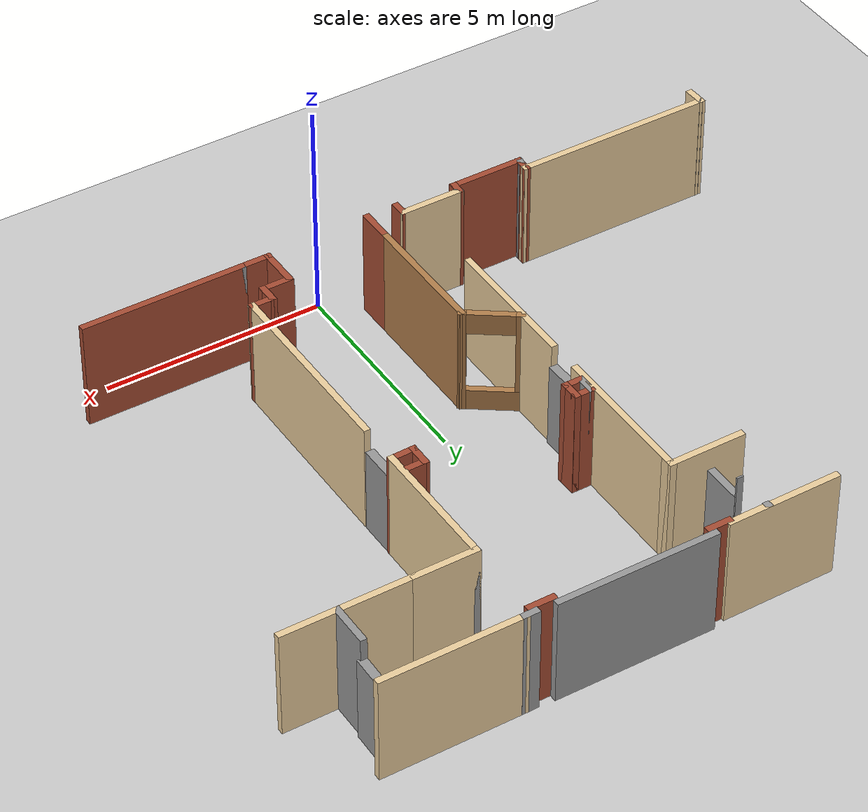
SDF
<sdf version="1.6">
 <world name="default">
  <model name="ground_plane">
   <static>1</static>
   <link name="link">
    <collision name="collision">
     <geometry><plane><normal>0 0 1</normal><size>100 100</size></plane></geometry>
     <surface>
      <contact><collide_bitmask>65535</collide_bitmask></contact>
      <friction><ode><mu>100</mu><mu2>50</mu2></ode></friction>
     </surface>
    </collision>
    <visual name="visual">
     <cast_shadows>0</cast_shadows>
     <geometry><plane><normal>0 0 1</normal><size>100 100</size></plane></geometry>
     <material>
      <script><uri>file://media/materials/scripts/gazebo.material</uri><name>Gazebo/Grey</name></script>
     </material>
    </visual>
   </link>
  </model>
  <model name="NSH_Hallway">
   <pose>-1.11426 2.16116 0 0 -0 0</pose>
   <link name="Door_5">
    <collision name="Door_5_Collision">
     <geometry><box><size>0.745301 0.2 2</size></box></geometry>
     <pose>0 0 1 0 -0 0</pose>
    </collision>
    <visual name="Door_5_Visual">
     <pose>0 0 1 0 -0 0</pose>
     <geometry><box><size>0.745301 0.2 2</size></box></geometry>
     <material>
      <script><uri>file://media/materials/scripts/gazebo.material</uri><name>Gazebo/Grey</name></script>
     </material>
    </visual>
    <pose>-0.72798 4.33452 0 0 -0 1.58636</pose>
   </link>
   <link name="Door_6">
    <collision name="Door_6_Collision">
     <geometry><box><size>0.80689 0.2 2</size></box></geometry>
     <pose>0 0 1 0 -0 0</pose>
    </collision>
    <visual name="Door_6_Visual">
     <pose>0 0 1 0 -0 0</pose>
     <geometry><box><size>0.80689 0.2 2</size></box></geometry>
     <material>
      <script><uri>file://media/materials/scripts/gazebo.material</uri><name>Gazebo/Grey</name></script>
     </material>
    </visual>
    <pose>3.65842 4.59476 0 0 -0 -1.56651</pose>
   </link>
   <link name="Door_7">
    <collision name="Door_7_Collision">
     <geometry><box><size>0.9 0.17 2</size></box></geometry>
     <pose>0 0 1 0 -0 0</pose>
    </collision>
    <visual name="Door_7_Visual">
     <pose>0 0 1 0 -0 0</pose>
     <geometry><box><size>0.9 0.17 2</size></box></geometry>
     <material>
      <script><uri>file://media/materials/scripts/gazebo.material</uri><name>Gazebo/Grey</name></script>
     </material>
    </visual>
    <pose>-1.62302 8.5531 0 0 -0 1.5718</pose>
   </link>
   <link name="Door_8">
    <collision name="Door_8_Collision">
     <geometry><box><size>1.0376 0.2 2</size></box></geometry>
     <pose>0 0 1 0 -0 0</pose>
    </collision>
    <visual name="Door_8_Visual">
     <pose>0 0 1 0 -0 0</pose>
     <geometry><box><size>1.0376 0.2 2</size></box></geometry>
     <material>
      <script><uri>file://media/materials/scripts/gazebo.material</uri><name>Gazebo/Grey</name></script>
     </material>
    </visual>
    <pose>6.70761 9.4487 0 0 -0 -1.58386</pose>
   </link>
   <link name="Wall_102">
    <collision name="Wall_102_Collision">
     <geometry><box><size>0.563182 0.15 2.5</size></box></geometry>
     <pose>0 0 1.25 0 -0 0</pose>
    </collision>
    <visual name="Wall_102_Visual">
     <pose>0 0 1.25 0 -0 0</pose>
     <geometry><box><size>0.563182 0.15 2.5</size></box></geometry>
     <material>
      <script><uri>file://media/materials/scripts/gazebo.material</uri><name>Gazebo/Bricks</name></script>
      <ambient>1 1 1 1</ambient>
     </material>
     <meta><layer>0</layer></meta>
    </visual>
    <pose>3.20361 5.2674 0 0 -0 -1.58529</pose>
   </link>
   <link name="Wall_103">
    <collision name="Wall_103_Collision">
     <geometry><box><size>0.64071 0.15 2.5</size></box></geometry>
     <pose>0 0 1.25 0 -0 0</pose>
    </collision>
    <visual name="Wall_103_Visual">
     <pose>0 0 1.25 0 -0 0</pose>
     <geometry><box><size>0.64071 0.15 2.5</size></box></geometry>
     <material>
      <script><uri>file://media/materials/scripts/gazebo.material</uri><name>Gazebo/Bricks</name></script>
      <ambient>1 1 1 1</ambient>
     </material>
     <meta><layer>0</layer></meta>
    </visual>
    <pose>3.4459 5.06699 0 0 -0 0.024385</pose>
   </link>
   <link name="Wall_17">
    <collision name="Wall_17_Collision">
     <geometry><box><size>4.5 0.15 2.5</size></box></geometry>
     <pose>0 0 1.25 0 -0 0</pose>
    </collision>
    <visual name="Wall_17_Visual">
     <pose>0 0 1.25 0 -0 0</pose>
     <geometry><box><size>4.5 0.15 2.5</size></box></geometry>
     <material>
      <script><uri>file://media/materials/scripts/gazebo.material</uri><name>Gazebo/Grey</name></script>
      <ambient>0.921569 0.807843 0.615686 1</ambient>
     </material>
     <meta><layer>0</layer></meta>
    </visual>
    <pose>3.6845 1.90132 0 0 -0 -1.5708</pose>
   </link>
   <link name="Wall_20">
    <collision name="Wall_20_Collision">
     <geometry><box><size>0.597367 0.15 2.5</size></box></geometry>
     <pose>0 0 1.25 0 -0 0</pose>
    </collision>
    <visual name="Wall_20_Visual">
     <pose>0 0 1.25 0 -0 0</pose>
     <geometry><box><size>0.597367 0.15 2.5</size></box></geometry>
     <material>
      <script><uri>file://media/materials/scripts/gazebo.material</uri><name>Gazebo/Bricks</name></script>
      <ambient>1 1 1 1</ambient>
     </material>
     <meta><layer>0</layer></meta>
    </visual>
    <pose>3.461 -0.27268 0 0 -0 3.13712</pose>
   </link>
   <link name="Wall_208">
    <pose>-1.61648 9.49659 0 0 -0 -1.5708</pose>
    <visual name="Wall_208_Visual_0">
     <pose>-0.419604 0 1.25 0 -0 0</pose>
     <geometry><box><size>0.160793 0.15 2.5</size></box></geometry>
     <material>
      <script><uri>file://media/materials/scripts/gazebo.material</uri><name>Gazebo/Grey</name></script>
      <ambient>1 1 1 1</ambient>
     </material>
     <meta><layer>0</layer></meta>
    </visual>
    <collision name="Wall_208_Collision_0">
     <geometry><box><size>0.160793 0.15 2.5</size></box></geometry>
     <pose>-0.419604 0 1.25 0 -0 0</pose>
    </collision>
    <visual name="Wall_208_Visual_1">
     <pose>0.480396 0 1.25 0 -0 0</pose>
     <geometry><box><size>0.039207 0.15 2.5</size></box></geometry>
     <material>
      <script><uri>file://media/materials/scripts/gazebo.material</uri><name>Gazebo/Grey</name></script>
      <ambient>1 1 1 1</ambient>
     </material>
     <meta><layer>0</layer></meta>
    </visual>
    <collision name="Wall_208_Collision_1">
     <geometry><box><size>0.039207 0.15 2.5</size></box></geometry>
     <pose>0.480396 0 1.25 0 -0 0</pose>
    </collision>
   </link>
   <link name="Wall_21">
    <collision name="Wall_21_Collision">
     <geometry><box><size>0.5 0.15 2.5</size></box></geometry>
     <pose>0 0 1.25 0 -0 0</pose>
    </collision>
    <visual name="Wall_21_Visual">
     <pose>0 0 1.25 0 -0 0</pose>
     <geometry><box><size>0.5 0.15 2.5</size></box></geometry>
     <material>
      <script><uri>file://media/materials/scripts/gazebo.material</uri><name>Gazebo/Bricks</name></script>
      <ambient>1 1 1 1</ambient>
     </material>
     <meta><layer>0</layer></meta>
    </visual>
    <pose>3.2375 -0.44668 0 0 -0 -1.5708</pose>
   </link>
   <link name="Wall_22">
    <collision name="Wall_22_Collision">
     <geometry><box><size>0.75 0.15 2.5</size></box></geometry>
     <pose>0 0 1.25 0 -0 0</pose>
    </collision>
    <visual name="Wall_22_Visual">
     <pose>0 0 1.25 0 -0 0</pose>
     <geometry><box><size>0.75 0.15 2.5</size></box></geometry>
     <material>
      <script><uri>file://media/materials/scripts/gazebo.material</uri><name>Gazebo/Bricks</name></script>
      <ambient>1 1 1 1</ambient>
     </material>
     <meta><layer>0</layer></meta>
    </visual>
    <pose>2.9375 -0.62168 0 0 -0 3.14159</pose>
   </link>
   <link name="Wall_227">
    <pose>-0.233746 2.45717 0 0 -0 2.52388</pose>
    <visual name="Wall_227_Visual_0">
     <pose>-0.59521 0 1.25 0 -0 0</pose>
     <geometry><box><size>0.174603 0.15 2.5</size></box></geometry>
     <material>
      <script><uri>file://media/materials/scripts/gazebo.material</uri><name>Gazebo/Wood</name></script>
      <ambient>1 1 1 1</ambient>
     </material>
     <meta><layer>0</layer></meta>
    </visual>
    <collision name="Wall_227_Collision_0">
     <geometry><box><size>0.174603 0.15 2.5</size></box></geometry>
     <pose>-0.59521 0 1.25 0 -0 0</pose>
    </collision>
    <visual name="Wall_227_Visual_1">
     <pose>0.087302 0 0.25 0 -0 0</pose>
     <geometry><box><size>1.19042 0.15 0.5</size></box></geometry>
     <material>
      <script><uri>file://media/materials/scripts/gazebo.material</uri><name>Gazebo/Wood</name></script>
      <ambient>1 1 1 1</ambient>
     </material>
     <meta><layer>0</layer></meta>
    </visual>
    <collision name="Wall_227_Collision_1">
     <geometry><box><size>1.19042 0.15 0.5</size></box></geometry>
     <pose>0.087302 0 0.25 0 -0 0</pose>
    </collision>
    <visual name="Wall_227_Visual_2">
     <pose>0.587302 0 1.5 0 -0 0</pose>
     <geometry><box><size>0.19042 0.15 2</size></box></geometry>
     <material>
      <script><uri>file://media/materials/scripts/gazebo.material</uri><name>Gazebo/Wood</name></script>
      <ambient>1 1 1 1</ambient>
     </material>
     <meta><layer>0</layer></meta>
    </visual>
    <collision name="Wall_227_Collision_2">
     <geometry><box><size>0.19042 0.15 2</size></box></geometry>
     <pose>0.587302 0 1.5 0 -0 0</pose>
    </collision>
    <visual name="Wall_227_Visual_3">
     <pose>-0.007908 0 2.25 0 -0 0</pose>
     <geometry><box><size>1 0.15 0.5</size></box></geometry>
     <material>
      <script><uri>file://media/materials/scripts/gazebo.material</uri><name>Gazebo/Wood</name></script>
      <ambient>1 1 1 1</ambient>
     </material>
     <meta><layer>0</layer></meta>
    </visual>
    <collision name="Wall_227_Collision_3">
     <geometry><box><size>1 0.15 0.5</size></box></geometry>
     <pose>-0.007908 0 2.25 0 -0 0</pose>
    </collision>
   </link>
   <link name="Wall_23">
    <collision name="Wall_23_Collision">
     <geometry><box><size>1 0.15 2.5</size></box></geometry>
     <pose>0 0 1.25 0 -0 0</pose>
    </collision>
    <visual name="Wall_23_Visual">
     <pose>0 0 1.25 0 -0 0</pose>
     <geometry><box><size>1 0.15 2.5</size></box></geometry>
     <material>
      <script><uri>file://media/materials/scripts/gazebo.material</uri><name>Gazebo/Bricks</name></script>
      <ambient>1 1 1 1</ambient>
     </material>
     <meta><layer>0</layer></meta>
    </visual>
    <pose>2.6375 -1.04668 0 0 -0 -1.5708</pose>
   </link>
   <link name="Wall_231">
    <collision name="Wall_231_Collision">
     <geometry><box><size>3.62605 0.15 2.5</size></box></geometry>
     <pose>0 0 1.25 0 -0 0</pose>
    </collision>
    <visual name="Wall_231_Visual">
     <pose>0 0 1.25 0 -0 0</pose>
     <geometry><box><size>3.62605 0.15 2.5</size></box></geometry>
     <material>
      <script><uri>file://media/materials/scripts/gazebo.material</uri><name>Gazebo/Grey</name></script>
      <ambient>0.180392 0.203922 0.211765 1</ambient>
     </material>
     <meta><layer>0</layer></meta>
    </visual>
    <pose>1.39727 10.0188 0 0 -0 -0.003914</pose>
   </link>
   <link name="Wall_24">
    <collision name="Wall_24_Collision">
     <geometry><box><size>0.776389 0.15 2.5</size></box></geometry>
     <pose>0 0 1.25 0 -0 0</pose>
    </collision>
    <visual name="Wall_24_Visual">
     <pose>0 0 1.25 0 -0 0</pose>
     <geometry><box><size>0.776389 0.15 2.5</size></box></geometry>
     <material>
      <script><uri>file://media/materials/scripts/gazebo.material</uri><name>Gazebo/Bricks</name></script>
      <ambient>1 1 1 1</ambient>
     </material>
     <meta><layer>0</layer></meta>
    </visual>
    <pose>2.9505 -1.47168 0 0 -0 0</pose>
   </link>
   <link name="Wall_25">
    <collision name="Wall_25_Collision">
     <geometry><box><size>0.15 0.15 2.5</size></box></geometry>
     <pose>0 0 1.25 0 -0 0</pose>
    </collision>
    <visual name="Wall_25_Visual">
     <pose>0 0 1.25 0 -0 0</pose>
     <geometry><box><size>0.15 0.15 2.5</size></box></geometry>
     <material>
      <script><uri>file://media/materials/scripts/gazebo.material</uri><name>Gazebo/Grey</name></script>
      <ambient>1 1 1 1</ambient>
     </material>
     <meta><layer>0</layer></meta>
    </visual>
    <pose>3.2635 -1.47168 0 0 -0 0</pose>
   </link>
   <link name="Wall_28">
    <collision name="Wall_28_Collision">
     <geometry><box><size>3.74144 0.15 2.5</size></box></geometry>
     <pose>0 0 1.25 0 -0 0</pose>
    </collision>
    <visual name="Wall_28_Visual">
     <pose>0 0 1.25 0 -0 0</pose>
     <geometry><box><size>3.74144 0.15 2.5</size></box></geometry>
     <material>
      <script><uri>file://media/materials/scripts/gazebo.material</uri><name>Gazebo/Bricks</name></script>
      <ambient>1 1 1 1</ambient>
     </material>
     <meta><layer>0</layer></meta>
    </visual>
    <pose>5.059 -1.47168 0 0 -0 0</pose>
   </link>
   <link name="Wall_31">
    <collision name="Wall_31_Collision">
     <geometry><box><size>3 0.15 2.5</size></box></geometry>
     <pose>0 0 1.25 0 -0 0</pose>
    </collision>
    <visual name="Wall_31_Visual">
     <pose>0 0 1.25 0 -0 0</pose>
     <geometry><box><size>3 0.15 2.5</size></box></geometry>
     <material>
      <script><uri>file://media/materials/scripts/gazebo.material</uri><name>Gazebo/Wood</name></script>
      <ambient>1 1 1 1</ambient>
     </material>
     <meta><layer>0</layer></meta>
    </visual>
    <pose>0.261501 0.68032 0 0 -0 1.5708</pose>
   </link>
   <link name="Wall_33">
    <collision name="Wall_33_Collision">
     <geometry><box><size>3.22621 0.15 2.5</size></box></geometry>
     <pose>0 0 1.25 0 -0 0</pose>
    </collision>
    <visual name="Wall_33_Visual">
     <pose>0 0 1.25 0 -0 0</pose>
     <geometry><box><size>3.22621 0.15 2.5</size></box></geometry>
     <material>
      <script><uri>file://media/materials/scripts/gazebo.material</uri><name>Gazebo/Grey</name></script>
      <ambient>0.921569 0.807843 0.615686 1</ambient>
     </material>
     <meta><layer>0</layer></meta>
    </visual>
    <pose>-0.744715 2.35474 0 0 -0 -1.5708</pose>
   </link>
   <link name="Wall_35">
    <collision name="Wall_35_Collision">
     <geometry><box><size>3.27379 0.15 2.5</size></box></geometry>
     <pose>0 0 1.25 0 -0 0</pose>
    </collision>
    <visual name="Wall_35_Visual">
     <pose>0 0 1.25 0 -0 0</pose>
     <geometry><box><size>3.27379 0.15 2.5</size></box></geometry>
     <material>
      <script><uri>file://media/materials/scripts/gazebo.material</uri><name>Gazebo/Grey</name></script>
      <ambient>0.921569 0.807843 0.615686 1</ambient>
     </material>
     <meta><layer>0</layer></meta>
    </visual>
    <pose>-0.74442 6.29502 0 0 -0 1.5708</pose>
   </link>
   <link name="Wall_36">
    <collision name="Wall_36_Collision">
     <geometry><box><size>0.298475 0.15 2.5</size></box></geometry>
     <pose>0 0 1.25 0 -0 0</pose>
    </collision>
    <visual name="Wall_36_Visual">
     <pose>0 0 1.25 0 -0 0</pose>
     <geometry><box><size>0.298475 0.15 2.5</size></box></geometry>
     <material>
      <script><uri>file://media/materials/scripts/gazebo.material</uri><name>Gazebo/Grey</name></script>
      <ambient>0.921569 0.807843 0.615686 1</ambient>
     </material>
     <meta><layer>0</layer></meta>
    </visual>
    <pose>-0.74442 7.93092 0 0 -0 1.5708</pose>
   </link>
   <link name="Wall_37">
    <collision name="Wall_37_Collision">
     <geometry><box><size>1.75 0.15 2.5</size></box></geometry>
     <pose>0 0 1.25 0 -0 0</pose>
    </collision>
    <visual name="Wall_37_Visual">
     <pose>0 0 1.25 0 -0 0</pose>
     <geometry><box><size>1.75 0.15 2.5</size></box></geometry>
     <material>
      <script><uri>file://media/materials/scripts/gazebo.material</uri><name>Gazebo/Grey</name></script>
      <ambient>0.921569 0.807843 0.615686 1</ambient>
     </material>
     <meta><layer>0</layer></meta>
    </visual>
    <pose>-1.54442 8.00492 0 0 -0 3.14159</pose>
   </link>
   <link name="Wall_39">
    <collision name="Wall_39_Collision">
     <geometry><box><size>3.02899 0.15 2.5</size></box></geometry>
     <pose>0 0 1.25 0 -0 0</pose>
    </collision>
    <visual name="Wall_39_Visual">
     <pose>0 0 1.25 0 -0 0</pose>
     <geometry><box><size>3.02899 0.15 2.5</size></box></geometry>
     <material>
      <script><uri>file://media/materials/scripts/gazebo.material</uri><name>Gazebo/Grey</name></script>
      <ambient>0.921569 0.807843 0.615686 1</ambient>
     </material>
     <meta><layer>0</layer></meta>
    </visual>
    <pose>3.6863 6.51246 0 0 -0 1.57419</pose>
   </link>
   <link name="Wall_40">
    <collision name="Wall_40_Collision">
     <geometry><box><size>0.25 0.15 2.5</size></box></geometry>
     <pose>0 0 1.25 0 -0 0</pose>
    </collision>
    <visual name="Wall_40_Visual">
     <pose>0 0 1.25 0 -0 0</pose>
     <geometry><box><size>0.25 0.15 2.5</size></box></geometry>
     <material>
      <script><uri>file://media/materials/scripts/gazebo.material</uri><name>Gazebo/Grey</name></script>
      <ambient>1 1 1 1</ambient>
     </material>
     <meta><layer>0</layer></meta>
    </visual>
    <pose>3.68142 8.00194 0 0 -0 1.5708</pose>
   </link>
   <link name="Wall_41">
    <collision name="Wall_41_Collision">
     <geometry><box><size>1.5 0.15 2.5</size></box></geometry>
     <pose>0 0 1.25 0 -0 0</pose>
    </collision>
    <visual name="Wall_41_Visual">
     <pose>0 0 1.25 0 -0 0</pose>
     <geometry><box><size>1.5 0.15 2.5</size></box></geometry>
     <material>
      <script><uri>file://media/materials/scripts/gazebo.material</uri><name>Gazebo/Grey</name></script>
      <ambient>0.921569 0.807843 0.615686 1</ambient>
     </material>
     <meta><layer>0</layer></meta>
    </visual>
    <pose>4.35642 8.05194 0 0 -0 0</pose>
   </link>
   <link name="Wall_45">
    <collision name="Wall_45_Collision">
     <geometry><box><size>3.25 0.15 2.5</size></box></geometry>
     <pose>0 0 1.25 0 -0 0</pose>
    </collision>
    <visual name="Wall_45_Visual">
     <pose>0 0 1.25 0 -0 0</pose>
     <geometry><box><size>3.25 0.15 2.5</size></box></geometry>
     <material>
      <script><uri>file://media/materials/scripts/gazebo.material</uri><name>Gazebo/Grey</name></script>
      <ambient>0.921569 0.807843 0.615686 1</ambient>
     </material>
     <meta><layer>0</layer></meta>
    </visual>
    <pose>5.40893 9.99034 0 0 -0 3.14159</pose>
   </link>
   <link name="Wall_46">
    <collision name="Wall_46_Collision">
     <geometry><box><size>0.385354 0.15 2.5</size></box></geometry>
     <pose>0 0 1.25 0 -0 0</pose>
    </collision>
    <visual name="Wall_46_Visual">
     <pose>0 0 1.25 0 -0 0</pose>
     <geometry><box><size>0.385354 0.15 2.5</size></box></geometry>
     <material>
      <script><uri>file://media/materials/scripts/gazebo.material</uri><name>Gazebo/Grey</name></script>
      <ambient>1 1 1 1</ambient>
     </material>
     <meta><layer>0</layer></meta>
    </visual>
    <pose>3.74137 9.98847 0 0 -0 -3.1257</pose>
   </link>
   <link name="Wall_48">
    <collision name="Wall_48_Collision">
     <geometry><box><size>0.652278 0.15 2.5</size></box></geometry>
     <pose>0 0 1.25 0 -0 0</pose>
    </collision>
    <visual name="Wall_48_Visual">
     <pose>0 0 1.25 0 -0 0</pose>
     <geometry><box><size>0.652278 0.15 2.5</size></box></geometry>
     <material>
      <script><uri>file://media/materials/scripts/gazebo.material</uri><name>Gazebo/Bricks</name></script>
      <ambient>1 1 1 1</ambient>
     </material>
     <meta><layer>0</layer></meta>
    </visual>
    <pose>3.42086 9.85588 0 0 -0 0</pose>
   </link>
   <link name="Wall_50">
    <collision name="Wall_50_Collision">
     <geometry><box><size>0.593134 0.15 2.5</size></box></geometry>
     <pose>0 0 1.25 0 -0 0</pose>
    </collision>
    <visual name="Wall_50_Visual">
     <pose>0 0 1.25 0 -0 0</pose>
     <geometry><box><size>0.593134 0.15 2.5</size></box></geometry>
     <material>
      <script><uri>file://media/materials/scripts/gazebo.material</uri><name>Gazebo/Bricks</name></script>
      <ambient>1 1 1 1</ambient>
     </material>
     <meta><layer>0</layer></meta>
    </visual>
    <pose>-0.535452 9.87519 0 0 -0 3.14159</pose>
   </link>
   <link name="Wall_52">
    <collision name="Wall_52_Collision">
     <geometry><box><size>2.58705 0.15 2.5</size></box></geometry>
     <pose>0 0 1.25 0 -0 0</pose>
    </collision>
    <visual name="Wall_52_Visual">
     <pose>0 0 1.25 0 -0 0</pose>
     <geometry><box><size>2.58705 0.15 2.5</size></box></geometry>
     <material>
      <script><uri>file://media/materials/scripts/gazebo.material</uri><name>Gazebo/Grey</name></script>
      <ambient>0.921569 0.807843 0.615686 1</ambient>
     </material>
     <meta><layer>0</layer></meta>
    </visual>
    <pose>-1.97541 9.93057 0 0 -0 0.006493</pose>
   </link>
   <link name="Wall_56">
    <collision name="Wall_56_Collision">
     <geometry><box><size>3 0.15 2.5</size></box></geometry>
     <pose>0 0 1.25 0 -0 0</pose>
    </collision>
    <visual name="Wall_56_Visual">
     <pose>0 0 1.25 0 -0 0</pose>
     <geometry><box><size>3 0.15 2.5</size></box></geometry>
     <material>
      <script><uri>file://media/materials/scripts/gazebo.material</uri><name>Gazebo/Grey</name></script>
      <ambient>0.921569 0.807843 0.615686 1</ambient>
     </material>
     <meta><layer>0</layer></meta>
    </visual>
    <pose>6.45642 8.05194 0 0 -0 0</pose>
   </link>
   <link name="Wall_58">
    <pose>6.67321 8.48396 0 0 -0 1.5708</pose>
    <visual name="Wall_58_Visual_0">
     <pose>0 0 1.25 0 -0 0</pose>
     <geometry><box><size>1 0.15 2.5</size></box></geometry>
     <material>
      <script><uri>file://media/materials/scripts/gazebo.material</uri><name>Gazebo/Grey</name></script>
      <ambient>1 1 1 1</ambient>
     </material>
     <meta><layer>0</layer></meta>
    </visual>
    <collision name="Wall_58_Collision_0">
     <geometry><box><size>1 0.15 2.5</size></box></geometry>
     <pose>0 0 1.25 0 -0 0</pose>
    </collision>
    <visual name="Wall_58_Visual_1">
     <pose>0.499122 0 1.25 0 -0 0</pose>
     <geometry><box><size>0.001756 0.15 2.5</size></box></geometry>
     <material>
      <script><uri>file://media/materials/scripts/gazebo.material</uri><name>Gazebo/Grey</name></script>
      <ambient>1 1 1 1</ambient>
     </material>
     <meta><layer>0</layer></meta>
    </visual>
    <collision name="Wall_58_Collision_1">
     <geometry><box><size>0.001756 0.15 2.5</size></box></geometry>
     <pose>0.499122 0 1.25 0 -0 0</pose>
    </collision>
   </link>
   <link name="Wall_60">
    <collision name="Wall_60_Collision">
     <geometry><box><size>0.914579 0.15 2.5</size></box></geometry>
     <pose>0 0 1.25 0 -0 0</pose>
    </collision>
    <visual name="Wall_60_Visual">
     <pose>0 0 1.25 0 -0 0</pose>
     <geometry><box><size>0.914579 0.15 2.5</size></box></geometry>
     <material>
      <script><uri>file://media/materials/scripts/gazebo.material</uri><name>Gazebo/Bricks</name></script>
      <ambient>1 1 1 1</ambient>
     </material>
     <meta><layer>0</layer></meta>
    </visual>
    <pose>0.262001 -1.12718 0 0 -0 -1.56949</pose>
   </link>
   <link name="Wall_63">
    <collision name="Wall_63_Collision">
     <geometry><box><size>0.411155 0.15 2.5</size></box></geometry>
     <pose>0 0 1.25 0 -0 0</pose>
    </collision>
    <visual name="Wall_63_Visual">
     <pose>0 0 1.25 0 -0 0</pose>
     <geometry><box><size>0.411155 0.15 2.5</size></box></geometry>
     <material>
      <script><uri>file://media/materials/scripts/gazebo.material</uri><name>Gazebo/Bricks</name></script>
      <ambient>1 1 1 1</ambient>
     </material>
     <meta><layer>0</layer></meta>
    </visual>
    <pose>-0.441999 -1.37918 0 0 -0 1.60526</pose>
   </link>
   <link name="Wall_64">
    <collision name="Wall_64_Collision">
     <geometry><box><size>1.50041 0.15 2.5</size></box></geometry>
     <pose>0 0 1.25 0 -0 0</pose>
    </collision>
    <visual name="Wall_64_Visual">
     <pose>0 0 1.25 0 -0 0</pose>
     <geometry><box><size>1.50041 0.15 2.5</size></box></geometry>
     <material>
      <script><uri>file://media/materials/scripts/gazebo.material</uri><name>Gazebo/Grey</name></script>
      <ambient>0.921569 0.807843 0.615686 1</ambient>
     </material>
     <meta><layer>0</layer></meta>
    </visual>
    <pose>-1.1215 -1.24868 0 0 -0 3.14159</pose>
   </link>
   <link name="Wall_65">
    <collision name="Wall_65_Collision">
     <geometry><box><size>0.15 0.15 2.5</size></box></geometry>
     <pose>0 0 1.25 0 -0 0</pose>
    </collision>
    <visual name="Wall_65_Visual">
     <pose>0 0 1.25 0 -0 0</pose>
     <geometry><box><size>0.15 0.15 2.5</size></box></geometry>
     <material>
      <script><uri>file://media/materials/scripts/gazebo.material</uri><name>Gazebo/Grey</name></script>
      <ambient>1 1 1 1</ambient>
     </material>
     <meta><layer>0</layer></meta>
    </visual>
    <pose>-1.7965 -1.24868 0 0 -0 0</pose>
   </link>
   <link name="Wall_67">
    <collision name="Wall_67_Collision">
     <geometry><box><size>0.355829 0.15 2.5</size></box></geometry>
     <pose>0 0 1.25 0 -0 0</pose>
    </collision>
    <visual name="Wall_67_Visual">
     <pose>0 0 1.25 0 -0 0</pose>
     <geometry><box><size>0.355829 0.15 2.5</size></box></geometry>
     <material>
      <script><uri>file://media/materials/scripts/gazebo.material</uri><name>Gazebo/Bricks</name></script>
      <ambient>1 1 1 1</ambient>
     </material>
     <meta><layer>0</layer></meta>
    </visual>
    <pose>-1.80542 -1.35121 0 0 -0 -1.65756</pose>
   </link>
   <link name="Wall_68">
    <collision name="Wall_68_Collision">
     <geometry><box><size>1.75 0.15 2.5</size></box></geometry>
     <pose>0 0 1.25 0 -0 0</pose>
    </collision>
    <visual name="Wall_68_Visual">
     <pose>0 0 1.25 0 -0 0</pose>
     <geometry><box><size>1.75 0.15 2.5</size></box></geometry>
     <material>
      <script><uri>file://media/materials/scripts/gazebo.material</uri><name>Gazebo/Bricks</name></script>
      <ambient>1 1 1 1</ambient>
     </material>
     <meta><layer>0</layer></meta>
    </visual>
    <pose>-2.60539 -1.45373 0 0 -0 3.14159</pose>
   </link>
   <link name="Wall_69">
    <collision name="Wall_69_Collision">
     <geometry><box><size>0.251149 0.15 2.5</size></box></geometry>
     <pose>0 0 1.25 0 -0 0</pose>
    </collision>
    <visual name="Wall_69_Visual">
     <pose>0 0 1.25 0 -0 0</pose>
     <geometry><box><size>0.251149 0.15 2.5</size></box></geometry>
     <material>
      <script><uri>file://media/materials/scripts/gazebo.material</uri><name>Gazebo/Grey</name></script>
      <ambient>1 1 1 1</ambient>
     </material>
     <meta><layer>0</layer></meta>
    </visual>
    <pose>-3.40692 -1.40371 0 0 -0 1.42359</pose>
   </link>
   <link name="Wall_70">
    <collision name="Wall_70_Collision">
     <geometry><box><size>0.331841 0.15 2.5</size></box></geometry>
     <pose>0 0 1.25 0 -0 0</pose>
    </collision>
    <visual name="Wall_70_Visual">
     <pose>0 0 1.25 0 -0 0</pose>
     <geometry><box><size>0.331841 0.15 2.5</size></box></geometry>
     <material>
      <script><uri>file://media/materials/scripts/gazebo.material</uri><name>Gazebo/Bricks</name></script>
      <ambient>1 1 1 1</ambient>
     </material>
     <meta><layer>0</layer></meta>
    </visual>
    <pose>-3.397 -1.26268 0 0 -0 1.54333</pose>
   </link>
   <link name="Wall_71">
    <collision name="Wall_71_Collision">
     <geometry><box><size>4.59689 0.15 2.5</size></box></geometry>
     <pose>0 0 1.25 0 -0 0</pose>
    </collision>
    <visual name="Wall_71_Visual">
     <pose>0 0 1.25 0 -0 0</pose>
     <geometry><box><size>4.59689 0.15 2.5</size></box></geometry>
     <material>
      <script><uri>file://media/materials/scripts/gazebo.material</uri><name>Gazebo/Grey</name></script>
      <ambient>0.921569 0.807843 0.615686 1</ambient>
     </material>
     <meta><layer>0</layer></meta>
    </visual>
    <pose>-5.618 -1.16918 0 0 -0 3.14047</pose>
   </link>
   <link name="Wall_73">
    <collision name="Wall_73_Collision">
     <geometry><box><size>0.5 0.15 2.5</size></box></geometry>
     <pose>0 0 1.25 0 -0 0</pose>
    </collision>
    <visual name="Wall_73_Visual">
     <pose>0 0 1.25 0 -0 0</pose>
     <geometry><box><size>0.5 0.15 2.5</size></box></geometry>
     <material>
      <script><uri>file://media/materials/scripts/gazebo.material</uri><name>Gazebo/Grey</name></script>
      <ambient>0.921569 0.807843 0.615686 1</ambient>
     </material>
     <meta><layer>0</layer></meta>
    </visual>
    <pose>-7.83452 -1.34158 0 0 -0 1.61067</pose>
   </link>
   <link name="Wall_74">
    <collision name="Wall_74_Collision">
     <geometry><box><size>0.15 0.15 2.5</size></box></geometry>
     <pose>0 0 1.25 0 -0 0</pose>
    </collision>
    <visual name="Wall_74_Visual">
     <pose>0 0 1.25 0 -0 0</pose>
     <geometry><box><size>0.15 0.15 2.5</size></box></geometry>
     <material>
      <script><uri>file://media/materials/scripts/gazebo.material</uri><name>Gazebo/Grey</name></script>
      <ambient>1 1 1 1</ambient>
     </material>
     <meta><layer>0</layer></meta>
    </visual>
    <pose>-7.8415 -1.16668 0 0 -0 0</pose>
   </link>
   <link name="Wall_94">
    <collision name="Wall_94_Collision">
     <geometry><box><size>0.5 0.15 2.5</size></box></geometry>
     <pose>0 0 1.25 0 -0 0</pose>
    </collision>
    <visual name="Wall_94_Visual">
     <pose>0 0 1.25 0 -0 0</pose>
     <geometry><box><size>0.5 0.15 2.5</size></box></geometry>
     <material>
      <script><uri>file://media/materials/scripts/gazebo.material</uri><name>Gazebo/Bricks</name></script>
      <ambient>1 1 1 1</ambient>
     </material>
     <meta><layer>0</layer></meta>
    </visual>
    <pose>-0.462172 5.06101 0 0 -0 3.14159</pose>
   </link>
   <link name="Wall_95">
    <collision name="Wall_95_Collision">
     <geometry><box><size>0.5 0.15 2.5</size></box></geometry>
     <pose>0 0 1.25 0 -0 0</pose>
    </collision>
    <visual name="Wall_95_Visual">
     <pose>0 0 1.25 0 -0 0</pose>
     <geometry><box><size>0.5 0.15 2.5</size></box></geometry>
     <material>
      <script><uri>file://media/materials/scripts/gazebo.material</uri><name>Gazebo/Grey</name></script>
      <ambient>1 1 1 1</ambient>
     </material>
     <meta><layer>0</layer></meta>
    </visual>
    <pose>-0.637172 5.23601 0 0 -0 1.5708</pose>
   </link>
   <link name="Wall_96">
    <collision name="Wall_96_Collision">
     <geometry><box><size>0.5 0.15 2.5</size></box></geometry>
     <pose>0 0 1.25 0 -0 0</pose>
    </collision>
    <visual name="Wall_96_Visual">
     <pose>0 0 1.25 0 -0 0</pose>
     <geometry><box><size>0.5 0.15 2.5</size></box></geometry>
     <material>
      <script><uri>file://media/materials/scripts/gazebo.material</uri><name>Gazebo/Bricks</name></script>
      <ambient>1 1 1 1</ambient>
     </material>
     <meta><layer>0</layer></meta>
    </visual>
    <pose>-0.462172 5.41101 0 0 -0 0</pose>
   </link>
   <link name="Wall_97">
    <collision name="Wall_97_Collision">
     <geometry><box><size>0.5 0.15 2.5</size></box></geometry>
     <pose>0 0 1.25 0 -0 0</pose>
    </collision>
    <visual name="Wall_97_Visual">
     <pose>0 0 1.25 0 -0 0</pose>
     <geometry><box><size>0.5 0.15 2.5</size></box></geometry>
     <material>
      <script><uri>file://media/materials/scripts/gazebo.material</uri><name>Gazebo/Bricks</name></script>
      <ambient>1 1 1 1</ambient>
     </material>
     <meta><layer>0</layer></meta>
    </visual>
    <pose>-0.287172 5.23601 0 0 -0 -1.5708</pose>
   </link>
   <link name="Wall_99">
    <collision name="Wall_99_Collision">
     <geometry><box><size>0.5 0.15 2.5</size></box></geometry>
     <pose>0 0 1.25 0 -0 0</pose>
    </collision>
    <visual name="Wall_99_Visual">
     <pose>0 0 1.25 0 -0 0</pose>
     <geometry><box><size>0.5 0.15 2.5</size></box></geometry>
     <material>
      <script><uri>file://media/materials/scripts/gazebo.material</uri><name>Gazebo/Bricks</name></script>
      <ambient>1 1 1 1</ambient>
     </material>
     <meta><layer>0</layer></meta>
    </visual>
    <pose>3.3816 5.4738 0 0 -0 0</pose>
   </link>
   <static>1</static>
  </model>
 </world>
</sdf>
